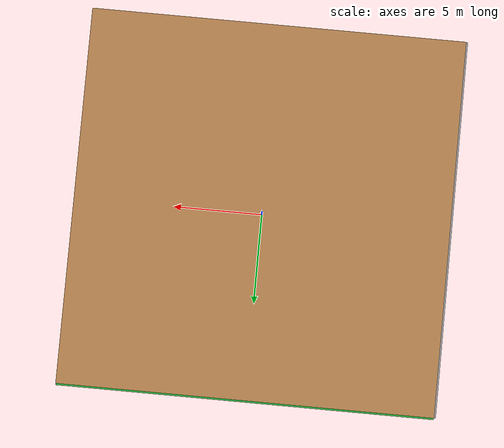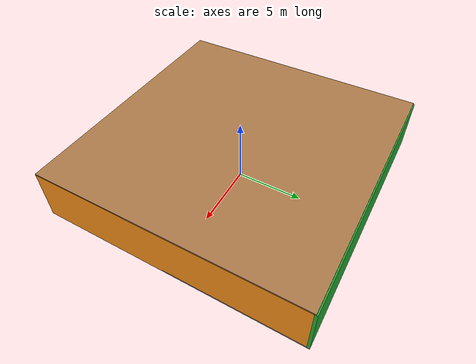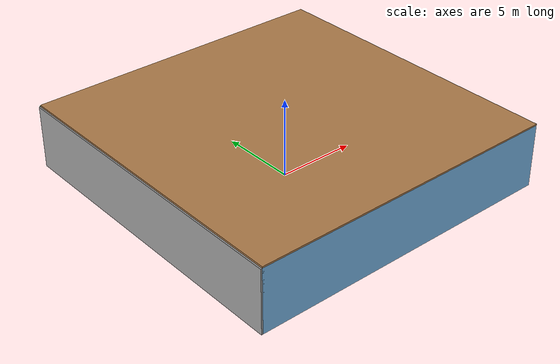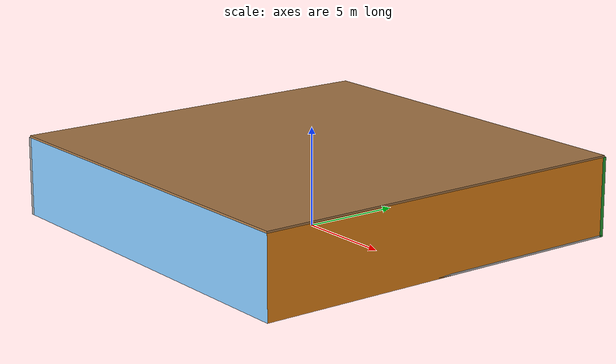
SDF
<sdf version="1.4">
 <world name="default">
  <physics type="ode">
   <max_step_size>0.001</max_step_size>
   <real_time_factor>1</real_time_factor>
   <real_time_update_rate>1000</real_time_update_rate>
   <gravity>0 0 -9.8</gravity>
  </physics>
  <scene><ambient>0.4 0.4 0.4 1</ambient><background>0.7 0.7 0.7 1</background><shadows>1</shadows></scene>
  <model name="Surrounding">
   <static>1</static>
   <link name="Ceiling">
    <collision name="Ceiling_Collision"><geometry><box><size>20 20 0.1</size></box></geometry></collision>
    <visual name="Ceiling_Visual">
     <geometry><box><size>20 20 0.1</size></box></geometry>
     <material>
      <script><uri>file://media/materials/scripts/gazebo.material</uri><name>Gazebo/WoodPallet</name></script>
     </material>
    </visual>
    <pose>0 0 4.05 0 0 0</pose>
   </link>
   <link name="Wall_South">
    <collision name="Wall_South_Collision">
     <geometry><box><size>20 0 4</size></box></geometry>
     <pose>0 0 2 0 -0 0</pose>
    </collision>
    <visual name="Wall_South_Visual">
     <pose>0 0 2 0 -0 0</pose>
     <geometry><box><size>20 0 4</size></box></geometry>
     <material>
      <script><uri>file://media/materials/scripts/gazebo.material</uri><name>Gazebo/SkyBlue</name></script>
     </material>
    </visual>
    <velocity_decay><linear>0</linear><angular>0</angular></velocity_decay>
    <pose>0 -10 0 0 -0 0</pose>
   </link>
   <link name="Wall_East">
    <collision name="Wall_21_Collision">
     <geometry><box><size>20 0 4</size></box></geometry>
     <pose>0 0 2 0 -0 0</pose>
    </collision>
    <visual name="Wall_21_Visual">
     <pose>0 0 2 0 -0 0</pose>
     <geometry><box><size>20 0 4</size></box></geometry>
     <material>
      <script><uri>file://media/materials/scripts/gazebo.material</uri><name>Gazebo/Orange</name></script>
     </material>
    </visual>
    <velocity_decay><linear>0</linear><angular>0</angular></velocity_decay>
    <pose>10 0 0 0 -0 1.5708</pose>
   </link>
   <link name="Wall_North">
    <collision name="Wall_22_Collision">
     <geometry><box><size>20 0.2 4</size></box></geometry>
     <pose>0 0 2 0 -0 0</pose>
    </collision>
    <visual name="Wall_22_Visual">
     <pose>0 0 2 0 -0 0</pose>
     <geometry><box><size>20 0.2 4</size></box></geometry>
     <material>
      <script><uri>file://media/materials/scripts/gazebo.material</uri><name>Gazebo/Green</name></script>
     </material>
    </visual>
    <velocity_decay><linear>0</linear><angular>0</angular></velocity_decay>
    <pose>0 10 0 0 -0 0</pose>
   </link>
   <link name="Wall_West">
    <collision name="Wall_23_Collision">
     <geometry><box><size>20 0.2 4</size></box></geometry>
     <pose>0 0 2 0 -0 0</pose>
    </collision>
    <visual name="Wall_23_Visual">
     <pose>0 0 2 0 -0 0</pose>
     <geometry><box><size>20 0.2 4</size></box></geometry>
     <material>
      <script><uri>file://media/materials/scripts/gazebo.material</uri><name>Gazebo/GreyGradientSky</name></script>
     </material>
    </visual>
    <velocity_decay><linear>0</linear><angular>0</angular></velocity_decay>
    <pose>-10 0 0 0 0 -1.5708</pose>
   </link>
   <link name="Ground_link">
    <collision name="collision">
     <pose>0 0 .05 0 -0 0</pose>
     <geometry><box><size>20 20 0.1</size></box></geometry>
    </collision>
    <visual name="visual">
     <pose>0 0 .05 0 -0 0</pose>
     <geometry><box><size>20 20 0.1</size></box></geometry>
     <material>
      <script><uri>file://media/materials/scripts/gazebo.material</uri><name>Gazebo/Pioneer2Body</name></script>
     </material>
    </visual>
   </link>
   <static>1</static>
  </model>
  <spherical_coordinates>
   <surface_model>EARTH_WGS84</surface_model>
   <latitude_deg>0</latitude_deg>
   <longitude_deg>0</longitude_deg>
   <elevation>0</elevation>
   <heading_deg>0</heading_deg>
  </spherical_coordinates>
  <light name="lightball_0" type="diffuse">
   <diffuse>0.8 0.8 0.8 1</diffuse>
   <specular>0.2 0.2 0.2 1</specular>
   <attenuation>
    <range>100</range>
    <constant>0.7</constant>
    <linear>0.01</linear>
    <quadratic>0.001</quadratic>
   </attenuation>
   <direction>-0.5 0.1 -0.9</direction>
   <pose>6.68485011731 -4.41510517356 3.10061893732 0 0 0</pose>
  </light>
  <light name="lightball_1" type="diffuse">
   <diffuse>0.8 0.8 0.8 1</diffuse>
   <specular>0.2 0.2 0.2 1</specular>
   <attenuation>
    <range>100</range>
    <constant>0.7</constant>
    <linear>0.01</linear>
    <quadratic>0.001</quadratic>
   </attenuation>
   <direction>-0.5 0.1 -0.9</direction>
   <pose>7.65501603541 -4.20392474977 3.0339276394 0 0 0</pose>
  </light>
  <light name="lightball_2" type="diffuse">
   <diffuse>0.8 0.8 0.8 1</diffuse>
   <specular>0.2 0.2 0.2 1</specular>
   <attenuation>
    <range>100</range>
    <constant>0.7</constant>
    <linear>0.01</linear>
    <quadratic>0.001</quadratic>
   </attenuation>
   <direction>-0.5 0.1 -0.9</direction>
   <pose>2.85949538991 0.906463607252 0.648949282866 0 0 0</pose>
  </light>
  <light name="lightball_3" type="diffuse">
   <diffuse>0.8 0.8 0.8 1</diffuse>
   <specular>0.2 0.2 0.2 1</specular>
   <attenuation>
    <range>100</range>
    <constant>0.7</constant>
    <linear>0.01</linear>
    <quadratic>0.001</quadratic>
   </attenuation>
   <direction>-0.5 0.1 -0.9</direction>
   <pose>7.39951661382 -8.10078373259 1.93102947998 0 0 0</pose>
  </light>
  <include><uri>model://table</uri><pose>-7.99151061038 -7.85126609411 0 0 0 1.19879801887</pose></include>
  <include><uri>model://cabinet</uri><pose>-4.11046302977 -6.95452224976 0 0 0 0.0463953891252</pose></include>
  <include><uri>model://table</uri><pose>-0.773683300152 -7.72582732579 0 0 0 0.367148346139</pose></include>
  <include>
   <uri>model://textured_shapes</uri>
   <pose>5.11393940864 -0.870038138847 0 0 0 0.946163580337</pose>
  </include>
  <include><uri>model://cabinet</uri><pose>7.18522496816 -1.33421804837 0 0 0 2.78550672759</pose></include>
 </world>
</sdf>

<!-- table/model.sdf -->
<sdf version="1.5">
  <model name="table">
    <static>true</static>
    <link name="link">
      <collision name="surface">
        <pose>0 0 1.0 0 0 0</pose>
        <geometry>
          <box>
            <size>1.5 0.8 0.03</size>
          </box>
        </geometry>
        <surface>
          <friction>
            <ode>
              <mu>0.6</mu>
              <mu2>0.6</mu2>
            </ode>
          </friction>
        </surface>
      </collision>
      <visual name="visual1">
        <pose>0 0 1.0 0 0 0</pose>
        <geometry>
          <box>
            <size>1.5 0.8 0.03</size>
          </box>
        </geometry>
        <material>
          <script>
            <uri>model://media/materials/scripts/gazebo.material</uri>
            <name>Gazebo/Wood</name>
          </script>
        </material>
      </visual>
      <collision name="front_left_leg">
        <pose>0.68 0.38 0.5 0 0 0</pose>
        <geometry>
          <cylinder>
            <radius>0.02</radius>
            <length>1.0</length>
          </cylinder>
        </geometry>
      </collision>
      <visual name="front_left_leg">
        <pose>0.68 0.38 0.5 0 0 0</pose>
        <geometry>
          <cylinder>
            <radius>0.02</radius>
            <length>1.0</length>
          </cylinder>
        </geometry>
        <material>
          <script>
            <uri>model://media/materials/scripts/gazebo.material</uri>
            <name>Gazebo/Grey</name>
          </script>
        </material>
      </visual>
      <collision name="front_right_leg">
        <pose>0.68 -0.38 0.5 0 0 0</pose>
        <geometry>
          <cylinder>
            <radius>0.02</radius>
            <length>1.0</length>
          </cylinder>
        </geometry>
      </collision>
      <visual name="front_right_leg">
        <pose>0.68 -0.38 0.5 0 0 0</pose>
        <geometry>
          <cylinder>
            <radius>0.02</radius>
            <length>1.0</length>
          </cylinder>
        </geometry>
        <material>
          <script>
            <uri>model://media/materials/scripts/gazebo.material</uri>
            <name>Gazebo/Grey</name>
          </script>
        </material>
      </visual>
      <collision name="back_right_leg">
        <pose>-0.68 -0.38 0.5 0 0 0</pose>
        <geometry>
          <cylinder>
            <radius>0.02</radius>
            <length>1.0</length>
          </cylinder>
        </geometry>
      </collision>
      <visual name="back_right_leg">
        <pose>-0.68 -0.38 0.5 0 0 0</pose>
        <geometry>
          <cylinder>
            <radius>0.02</radius>
            <length>1.0</length>
          </cylinder>
        </geometry>
        <material>
          <script>
            <uri>model://media/materials/scripts/gazebo.material</uri>
            <name>Gazebo/Grey</name>
          </script>
        </material>
      </visual>
      <collision name="back_left_leg">
        <pose>-0.68 0.38 0.5 0 0 0</pose>
        <geometry>
          <cylinder>
            <radius>0.02</radius>
            <length>1.0</length>
          </cylinder>
        </geometry>
      </collision>
      <visual name="back_left_leg">
        <pose>-0.68 0.38 0.5 0 0 0</pose>
        <geometry>
          <cylinder>
            <radius>0.02</radius>
            <length>1.0</length>
          </cylinder>
        </geometry>
        <material>
          <script>
            <uri>model://media/materials/scripts/gazebo.material</uri>
            <name>Gazebo/Grey</name>
          </script>
        </material>
      </visual>
    </link>
  </model>
</sdf>

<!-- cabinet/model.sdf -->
<sdf version="1.5">
  <model name="cabinet">
    <static>true</static>
    <link name="cabinet_bottom_plate">
      <inertial>
        <pose>0 0 -1 0 0 0</pose>
        <inertia>
          <ixx>2.050000</ixx>
          <ixy>0</ixy>
          <ixz>0</ixz>
          <iyy>2.050000</iyy>
          <iyz>0</iyz>
          <izz>2.050000</izz>
        </inertia>
        <mass>25.000000</mass>
      </inertial>
      <collision name="cabinet_bottom_plate_geom">
        <pose>0 0 0.010000 0 0 0</pose>
        <geometry>
          <box>
            <size>0.450000 0.450000 0.020000</size>
          </box>
        </geometry>
      </collision>
      <visual name="cabinet_bottom_plate_geom_visual">
        <pose>0 0 0.010000 0 0 0</pose>
        <geometry>
          <box>
            <size>0.450000 0.450000 0.020000</size>
          </box>
        </geometry>
        <material>
          <script>
            <uri>model://media/materials/scripts/gazebo.material</uri>
            <name>Gazebo/Wood</name>
          </script>
        </material>
      </visual>
      <collision name="cabinet_bottom_plate_geom_cabinet_back_plate">
        <pose>0.235000 0 0.510000 0 0 0</pose>
        <geometry>
          <box>
            <size>0.020000 0.450000 1.020000</size>
          </box>
        </geometry>
      </collision>
      <visual name="cabinet_bottom_plate_geom_cabinet_back_plate_visual">
        <pose>0.235000 0 0.510000 0 0 0</pose>
        <geometry>
          <box>
            <size>0.020000 0.450000 1.020000</size>
          </box>
        </geometry>
        <material>
          <script>
            <uri>model://media/materials/scripts/gazebo.material</uri>
            <name>Gazebo/Wood</name>
          </script>
        </material>
      </visual>
      <collision name="cabinet_bottom_plate_geom_cabinet_left_plate">
        <pose>0 0.235000 0.510000 0 0 0</pose>
        <geometry>
          <box>
            <size>0.450000 0.020000 1.020000</size>
          </box>
        </geometry>
      </collision>
      <visual name="cabinet_bottom_plate_geom_cabinet_left_plate_visual">
        <pose>0 0.235000 0.510000 0 0 0</pose>
        <geometry>
          <box>
            <size>0.450000 0.020000 1.020000</size>
          </box>
        </geometry>
        <material>
          <script>
            <uri>model://media/materials/scripts/gazebo.material</uri>
            <name>Gazebo/Wood</name>
          </script>
        </material>
      </visual>
      <collision name="cabinet_bottom_plate_geom_cabinet_middle_plate">
        <pose>0 0 0.510000 0 0 0</pose>
        <geometry>
          <box>
            <size>0.450000 0.450000 0.020000</size>
          </box>
        </geometry>
      </collision>
      <visual name="cabinet_bottom_plate_geom_cabinet_middle_plate_visual">
        <pose>0 0 0.510000 0 0 0</pose>
        <geometry>
          <box>
            <size>0.450000 0.450000 0.020000</size>
          </box>
        </geometry>
        <material>
          <script>
            <uri>model://media/materials/scripts/gazebo.material</uri>
            <name>Gazebo/Wood</name>
          </script>
        </material>
      </visual>
      <collision name="cabinet_bottom_plate_geom_cabinet_right_plate">
        <pose>0 -0.235000 0.510000 0 0 0</pose>
        <geometry>
          <box>
            <size>0.450000 0.020000 1.020000</size>
          </box>
        </geometry>
      </collision>
      <visual name="cabinet_bottom_plate_geom_cabinet_right_plate_visual">
        <pose>0 -0.235000 0.510000 0 0 0</pose>
        <geometry>
          <box>
            <size>0.450000 0.020000 1.020000</size>
          </box>
        </geometry>
        <material>
          <script>
            <uri>model://media/materials/scripts/gazebo.material</uri>
            <name>Gazebo/Wood</name>
          </script>
        </material>
      </visual>
      <collision name="cabinet_bottom_plate_geom_cabinet_top_plate">
        <pose>0 0 1.010000 0 0 0</pose>
        <geometry>
          <box>
            <size>0.450000 0.450000 0.020000</size>
          </box>
        </geometry>
      </collision>
      <visual name="cabinet_bottom_plate_geom_cabinet_top_plate_visual">
        <pose>0 0 1.010000 0 0 0</pose>
        <geometry>
          <box>
            <size>0.450000 0.450000 0.020000</size>
          </box>
        </geometry>
        <material>
          <script>
            <uri>model://media/materials/scripts/gazebo.material</uri>
            <name>Gazebo/Wood</name>
          </script>
        </material>
      </visual>
    </link>
  </model>
</sdf>

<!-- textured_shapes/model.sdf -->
<sdf version="1.6">
  <model name="textured_shapes">
    <pose>0 0 0.5 0 0 0</pose>
    <link name="box">
      <pose>0 -1.5 0 0 0 0</pose>
      <collision name="collision">
        <geometry>
          <box>
            <size>1 1 1</size>
          </box>
        </geometry>
      </collision>
      <visual name="visual">
        <geometry>
          <box>
            <size>1 1 1</size>
          </box>
        </geometry>
        <material>
          <script>
            <uri>model://../model_source/models/textured_shapes/materials/scripts</uri>
            <uri>model://../model_source/models/textured_shapes/materials/textures</uri>
            <name>TexturedShape/Squares</name>
          </script>
        </material>
      </visual>
    </link>
    <link name="sphere">
      <collision name="collision">
        <geometry>
          <sphere>
            <radius>0.5</radius>
          </sphere>
        </geometry>
      </collision>
      <visual name="visual">
        <geometry>
          <sphere>
            <radius>0.5</radius>
          </sphere>
        </geometry>
        <material>
          <script>
            <uri>model://../model_source/models/textured_shapes/materials/scripts</uri>
            <uri>model://../model_source/models/textured_shapes/materials/textures</uri>
            <name>TexturedShape/Squares</name>
          </script>
        </material>
      </visual>
    </link>
    <link name="cylinder">
      <pose>0 1.5 0 0 0 0</pose>
      <collision name="collision">
        <geometry>
          <cylinder>
            <radius>0.5</radius>
            <length>1</length>
          </cylinder>
        </geometry>
      </collision>
      <visual name="visual">
        <geometry>
          <cylinder>
            <radius>0.5</radius>
            <length>1</length>
          </cylinder>
        </geometry>
        <material>
          <script>
            <uri>model://../model_source/models/textured_shapes/materials/scripts</uri>
            <uri>model://../model_source/models/textured_shapes/materials/textures</uri>
            <name>TexturedShape/Squares</name>
          </script>
        </material>
      </visual>
    </link>
  </model>
</sdf>
